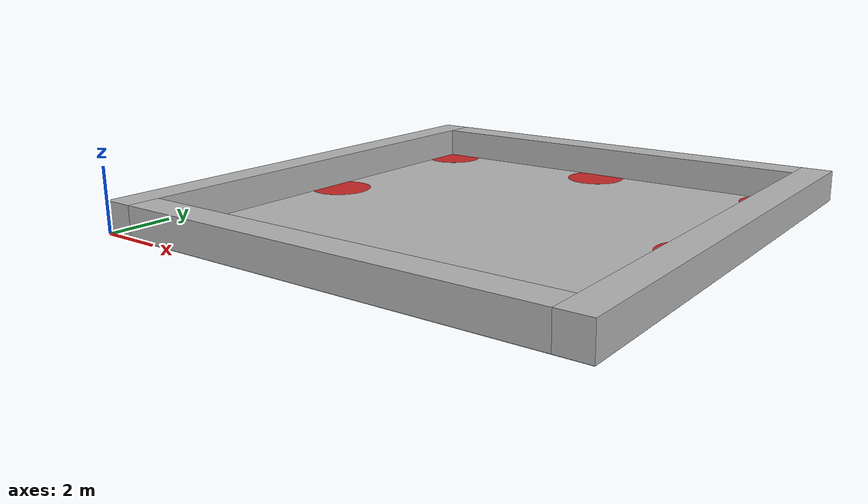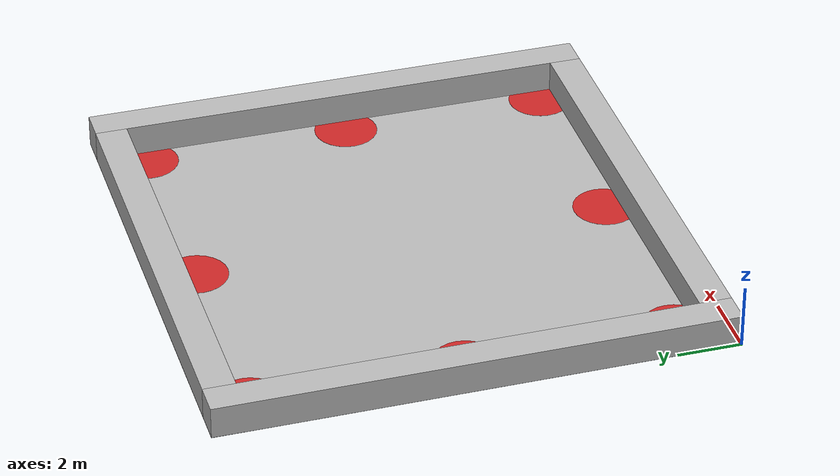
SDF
<sdf version="1.6">
 <world name="default">
  <light name="sun" type="directional">
   <pose>-11.8208 -19.3843 17.2198 0 -0 0</pose>
   <diffuse>0.7 0.7 0.7 1</diffuse>
   <specular>0.2 0.2 0.2 1</specular>
   <attenuation>
    <range>1000</range>
    <constant>0.9</constant>
    <linear>0.01</linear>
    <quadratic>0.001</quadratic>
   </attenuation>
   <direction>0.3698 0.4 -0.5</direction>
  </light>
  <scene><ambient>0.4 0.4 0.4 1</ambient><background>0.7 0.7 0.7 1</background><shadows>0</shadows></scene>
  <gravity>0 0 -9.8</gravity>
  <magnetic_field>6e-06 2.3e-05 -4.2e-05</magnetic_field>
  <atmosphere type="adiabatic"/>
  <physics name="default_physics" default="0" type="ode">
   <max_step_size>0.001</max_step_size>
   <real_time_update_rate>0.0</real_time_update_rate>
  </physics>
  <spherical_coordinates>
   <surface_model>EARTH_WGS84</surface_model>
   <latitude_deg>0</latitude_deg>
   <longitude_deg>0</longitude_deg>
   <elevation>0</elevation>
   <heading_deg>0</heading_deg>
  </spherical_coordinates>
  <model name="box_0">
   <pose>8 8 0 0 -0 0</pose>
   <static>1</static>
   <link name="link">
    <inertial>
     <mass>1</mass>
     <inertia><ixx>1</ixx><ixy>0</ixy><ixz>0</ixz><iyy>1</iyy><iyz>0</iyz><izz>1</izz></inertia>
    </inertial>
    <collision name="collision">
     <geometry><box><size>16 16 0.01</size></box></geometry>
     <laser_retro>7.15378e+22</laser_retro>
    </collision>
    <visual name="visual">
     <geometry><box><size>16 16 0.01</size></box></geometry>
     <material>
      <script><uri>file://media/materials/scripts/gazebo.material</uri><name>Gazebo/GroundMaze</name></script>
     </material>
    </visual>
    <gravity>0</gravity>
   </link>
  </model>
  <model name="box_1">
   <pose>8 0.5 0.5 0 -0 0</pose>
   <static>1</static>
   <link name="link">
    <inertial>
     <mass>1</mass>
     <inertia><ixx>1</ixx><ixy>0</ixy><ixz>0</ixz><iyy>1</iyy><iyz>0</iyz><izz>1</izz></inertia>
    </inertial>
    <collision name="collision"><geometry><box><size>14 1 1</size></box></geometry></collision>
    <visual name="visual">
     <geometry><box><size>14 1 1</size></box></geometry>
     <material>
      <script><uri>file://media/materials/scripts/gazebo.material</uri><name>Gazebo/WallMaze</name></script>
     </material>
    </visual>
   </link>
  </model>
  <model name="box_2">
   <pose>8 15.5 0.5 0 -0 0</pose>
   <static>1</static>
   <link name="link">
    <inertial>
     <mass>1</mass>
     <inertia><ixx>1</ixx><ixy>0</ixy><ixz>0</ixz><iyy>1</iyy><iyz>0</iyz><izz>1</izz></inertia>
    </inertial>
    <collision name="collision"><geometry><box><size>14 1 1</size></box></geometry></collision>
    <visual name="visual">
     <geometry><box><size>14 1 1</size></box></geometry>
     <material>
      <script><uri>file://media/materials/scripts/gazebo.material</uri><name>Gazebo/WallMaze</name></script>
     </material>
    </visual>
   </link>
  </model>
  <model name="box_3">
   <pose>15.5 8 0.5 0 -0 0</pose>
   <static>1</static>
   <link name="link">
    <inertial>
     <mass>1</mass>
     <inertia><ixx>1</ixx><ixy>0</ixy><ixz>0</ixz><iyy>1</iyy><iyz>0</iyz><izz>1</izz></inertia>
    </inertial>
    <collision name="collision"><geometry><box><size>1 16 1</size></box></geometry></collision>
    <visual name="visual">
     <geometry><box><size>1 16 1</size></box></geometry>
     <material>
      <script><uri>file://media/materials/scripts/gazebo.material</uri><name>Gazebo/WallMaze</name></script>
     </material>
    </visual>
   </link>
  </model>
  <model name="box_4">
   <pose>0.5 8 0.5 0 -0 0</pose>
   <static>1</static>
   <link name="link">
    <inertial>
     <mass>1</mass>
     <inertia><ixx>1</ixx><ixy>0</ixy><ixz>0</ixz><iyy>1</iyy><iyz>0</iyz><izz>1</izz></inertia>
    </inertial>
    <collision name="collision"><geometry><box><size>1 16 1</size></box></geometry></collision>
    <visual name="visual">
     <geometry><box><size>1 16 1</size></box></geometry>
     <material>
      <script><uri>file://media/materials/scripts/gazebo.material</uri><name>Gazebo/WallMaze</name></script>
     </material>
    </visual>
   </link>
  </model>
  <model name="cylinder_0">
   <pose>1.5 14.5 0.001 0 -0 0</pose>
   <static>1</static>
   <link name="link">
    <inertial>
     <mass>1</mass>
     <inertia><ixx>1</ixx><ixy>0</ixy><ixz>0</ixz><iyy>1</iyy><iyz>0</iyz><izz>1</izz></inertia>
    </inertial>
    <collision name="collision">
     <geometry><cylinder><radius>1</radius><length>0.01</length></cylinder></geometry>
     <laser_retro>7.22507e+28</laser_retro>
    </collision>
    <visual name="visual">
     <geometry><cylinder><radius>1</radius><length>0.01</length></cylinder></geometry>
     <material>
      <script><uri>file://media/materials/scripts/gazebo.material</uri><name>Gazebo/Red</name></script>
     </material>
    </visual>
   </link>
  </model>
  <model name="cylinder_0_0">
   <pose>1.5 1.5 0.001 0 -0 0</pose>
   <static>1</static>
   <link name="link">
    <inertial>
     <mass>1</mass>
     <inertia><ixx>1</ixx><ixy>0</ixy><ixz>0</ixz><iyy>1</iyy><iyz>0</iyz><izz>1</izz></inertia>
    </inertial>
    <collision name="collision">
     <geometry><cylinder><radius>1</radius><length>0.01</length></cylinder></geometry>
     <laser_retro>-1.08178e-26</laser_retro>
    </collision>
    <visual name="visual">
     <geometry><cylinder><radius>1</radius><length>0.01</length></cylinder></geometry>
     <material>
      <script><uri>file://media/materials/scripts/gazebo.material</uri><name>Gazebo/Red</name></script>
     </material>
    </visual>
   </link>
  </model>
  <model name="cylinder_0_0_0">
   <pose>8 14.5 0.001 0 -0 0</pose>
   <static>1</static>
   <link name="link">
    <inertial>
     <mass>1</mass>
     <inertia><ixx>1</ixx><ixy>0</ixy><ixz>0</ixz><iyy>1</iyy><iyz>0</iyz><izz>1</izz></inertia>
    </inertial>
    <collision name="collision">
     <geometry><cylinder><radius>1</radius><length>0.01</length></cylinder></geometry>
     <laser_retro>7.33868e+28</laser_retro>
    </collision>
    <visual name="visual">
     <geometry><cylinder><radius>1</radius><length>0.01</length></cylinder></geometry>
     <material>
      <script><uri>file://media/materials/scripts/gazebo.material</uri><name>Gazebo/Red</name></script>
     </material>
    </visual>
   </link>
  </model>
  <model name="cylinder_0_0_0_0">
   <pose>8 1.5 0.001 0 -0 0</pose>
   <static>1</static>
   <link name="link">
    <inertial>
     <mass>1</mass>
     <inertia><ixx>1</ixx><ixy>0</ixy><ixz>0</ixz><iyy>1</iyy><iyz>0</iyz><izz>1</izz></inertia>
    </inertial>
    <collision name="collision">
     <geometry><cylinder><radius>1</radius><length>0.01</length></cylinder></geometry>
     <laser_retro>-1.05461e-26</laser_retro>
    </collision>
    <visual name="visual">
     <geometry><cylinder><radius>1</radius><length>0.01</length></cylinder></geometry>
     <material>
      <script><uri>file://media/materials/scripts/gazebo.material</uri><name>Gazebo/Red</name></script>
     </material>
    </visual>
   </link>
  </model>
  <model name="cylinder_0_0_0_0_0">
   <pose>14.5 1.5 0.001 0 -0 0</pose>
   <static>1</static>
   <link name="link">
    <inertial>
     <mass>1</mass>
     <inertia><ixx>1</ixx><ixy>0</ixy><ixz>0</ixz><iyy>1</iyy><iyz>0</iyz><izz>1</izz></inertia>
    </inertial>
    <collision name="collision">
     <geometry><cylinder><radius>1</radius><length>0.01</length></cylinder></geometry>
     <laser_retro>-1.02049e-26</laser_retro>
    </collision>
    <visual name="visual">
     <geometry><cylinder><radius>1</radius><length>0.01</length></cylinder></geometry>
     <material>
      <script><uri>file://media/materials/scripts/gazebo.material</uri><name>Gazebo/Red</name></script>
     </material>
    </visual>
   </link>
  </model>
  <model name="cylinder_0_0_0_1">
   <pose>14.5 14.5 0.001 0 -0 0</pose>
   <static>1</static>
   <link name="link">
    <inertial>
     <mass>1</mass>
     <inertia><ixx>1</ixx><ixy>0</ixy><ixz>0</ixz><iyy>1</iyy><iyz>0</iyz><izz>1</izz></inertia>
    </inertial>
    <collision name="collision">
     <geometry><cylinder><radius>1</radius><length>0.01</length></cylinder></geometry>
     <laser_retro>-8.36237e-27</laser_retro>
    </collision>
    <visual name="visual">
     <geometry><cylinder><radius>1</radius><length>0.01</length></cylinder></geometry>
     <material>
      <script><uri>file://media/materials/scripts/gazebo.material</uri><name>Gazebo/Red</name></script>
     </material>
    </visual>
   </link>
  </model>
  <model name="cylinder_0_0_0_0_0_0">
   <pose>14.5 8 0.001 0 -0 0</pose>
   <static>1</static>
   <link name="link">
    <inertial>
     <mass>1</mass>
     <inertia><ixx>1</ixx><ixy>0</ixy><ixz>0</ixz><iyy>1</iyy><iyz>0</iyz><izz>1</izz></inertia>
    </inertial>
    <collision name="collision">
     <geometry><cylinder><radius>1</radius><length>0.01</length></cylinder></geometry>
     <laser_retro>7.97178e-10</laser_retro>
    </collision>
    <visual name="visual">
     <geometry><cylinder><radius>1</radius><length>0.01</length></cylinder></geometry>
     <material>
      <script><uri>file://media/materials/scripts/gazebo.material</uri><name>Gazebo/Red</name></script>
     </material>
    </visual>
   </link>
  </model>
  <model name="cylinder_0_0_0_2">
   <pose>1.5 8 0.001 0 -0 0</pose>
   <static>1</static>
   <link name="link">
    <inertial>
     <mass>1</mass>
     <inertia><ixx>1</ixx><ixy>0</ixy><ixz>0</ixz><iyy>1</iyy><iyz>0</iyz><izz>1</izz></inertia>
    </inertial>
    <collision name="collision">
     <geometry><cylinder><radius>1</radius><length>0.01</length></cylinder></geometry>
     <laser_retro>-1.02046e-26</laser_retro>
    </collision>
    <visual name="visual">
     <geometry><cylinder><radius>1</radius><length>0.01</length></cylinder></geometry>
     <material>
      <script><uri>file://media/materials/scripts/gazebo.material</uri><name>Gazebo/Red</name></script>
     </material>
    </visual>
   </link>
  </model>
 </world>
</sdf>
